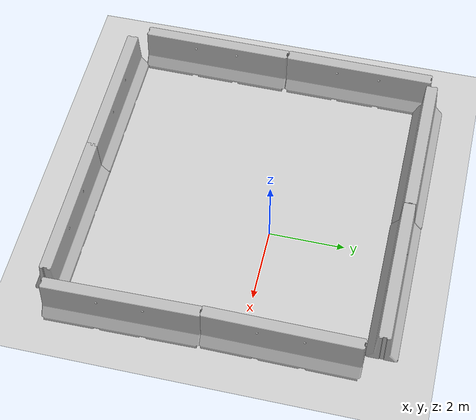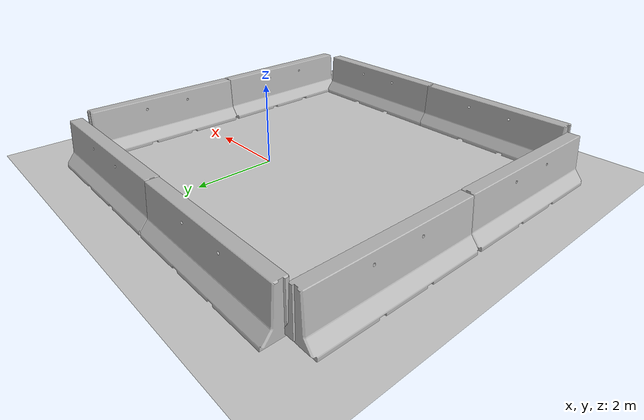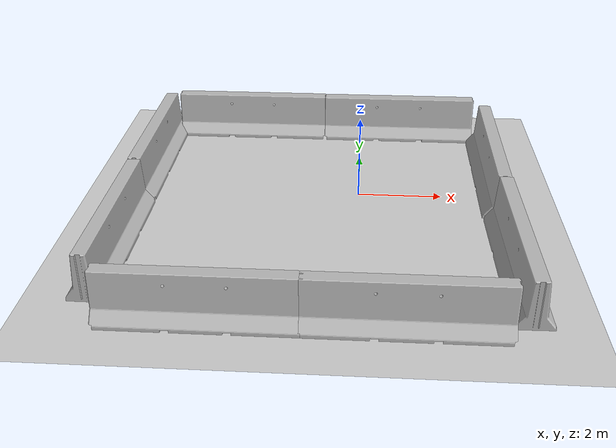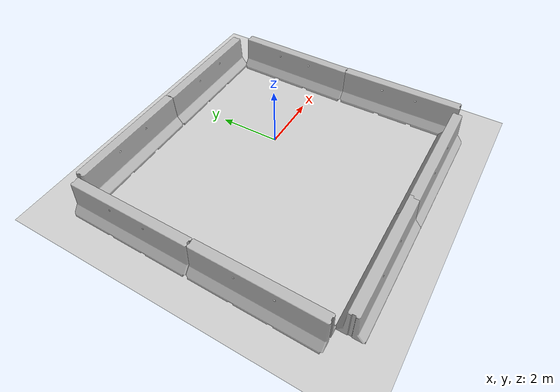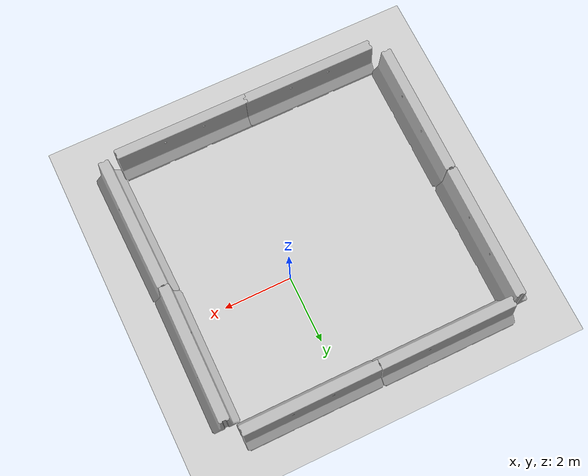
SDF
<sdf version="1.6">
 <world name="default">
  <light name="sun" type="directional">
   <pose>0 0 10 0 -0 0</pose>
   <diffuse>0.8 0.8 0.8 1</diffuse>
   <specular>0.1 0.1 0.1 1</specular>
   <attenuation>
    <range>1000</range>
    <constant>0.9</constant>
    <linear>0.01</linear>
    <quadratic>0.001</quadratic>
   </attenuation>
   <direction>-0.5 0.5 -1</direction>
  </light>
  <model name="ground_plane">
   <static>1</static>
   <link name="link">
    <collision name="collision">
     <geometry><plane><normal>0 0 1</normal><size>100 100</size></plane></geometry>
     <surface><friction><ode><mu>100</mu><mu2>50</mu2></ode></friction></surface>
    </collision>
    <visual name="visual">
     <cast_shadows>0</cast_shadows>
     <geometry><plane><normal>0 0 1</normal><size>100 100</size></plane></geometry>
     <material>
      <script><uri>file://media/materials/scripts/gazebo.material</uri><name>Gazebo/Grey</name></script>
     </material>
    </visual>
   </link>
  </model>
  <gravity>0 0 -9.8</gravity>
  <magnetic_field>6e-06 2.3e-05 -4.2e-05</magnetic_field>
  <atmosphere type="adiabatic"/>
  <physics name="default_physics" default="0" type="ode">
   <max_step_size>0.001</max_step_size>
   <real_time_factor>1</real_time_factor>
   <real_time_update_rate>1000</real_time_update_rate>
  </physics>
  <scene><ambient>0.4 0.4 0.4 1</ambient><background>0.7 0.7 0.7 1</background><shadows>1</shadows></scene>
  <spherical_coordinates>
   <surface_model>EARTH_WGS84</surface_model>
   <latitude_deg>0</latitude_deg>
   <longitude_deg>0</longitude_deg>
   <elevation>0</elevation>
   <heading_deg>0</heading_deg>
  </spherical_coordinates>
  <model name="jersey_barrier">
   <static>1</static>
   <link name="link">
    <visual name="visual">
     <geometry>
      <mesh><uri>model://jersey_barrier/meshes/jersey_barrier.dae</uri><scale>1 1 1</scale></mesh>
     </geometry>
    </visual>
    <collision name="upright">
     <pose>0 0 0.5715 0 -0 0</pose>
     <geometry><box><size>4.06542 0.3063 1.143</size></box></geometry>
    </collision>
    <collision name="base">
     <pose>0 0 0.032258 0 -0 0</pose>
     <geometry><box><size>4.06542 0.8107 0.064516</size></box></geometry>
    </collision>
    <collision name="base2">
     <pose>0 0 0.1 0 -0 0</pose>
     <geometry><box><size>4.06542 0.65 0.1</size></box></geometry>
    </collision>
    <collision name="base3">
     <pose>0 0 0.2 0 -0 0</pose>
     <geometry><box><size>4.06542 0.5 0.1</size></box></geometry>
    </collision>
    <collision name="left-angle">
     <pose>0 -0.224 0.2401 0.9 -0 0</pose>
     <geometry><box><size>4.06542 0.5 0.064516</size></box></geometry>
    </collision>
    <collision name="right-angle">
     <pose>0 0.224 0.2401 -0.9 0 0</pose>
     <geometry><box><size>4.06542 0.5 0.064516</size></box></geometry>
    </collision>
   </link>
   <pose>-2.97106 -5.06606 0 0 -0 0</pose>
  </model>
  <model name="jersey_barrier_0">
   <static>1</static>
   <link name="link">
    <visual name="visual">
     <geometry>
      <mesh><uri>model://jersey_barrier/meshes/jersey_barrier.dae</uri><scale>1 1 1</scale></mesh>
     </geometry>
    </visual>
    <collision name="upright">
     <pose>0 0 0.5715 0 -0 0</pose>
     <geometry><box><size>4.06542 0.3063 1.143</size></box></geometry>
    </collision>
    <collision name="base">
     <pose>0 0 0.032258 0 -0 0</pose>
     <geometry><box><size>4.06542 0.8107 0.064516</size></box></geometry>
    </collision>
    <collision name="base2">
     <pose>0 0 0.1 0 -0 0</pose>
     <geometry><box><size>4.06542 0.65 0.1</size></box></geometry>
    </collision>
    <collision name="base3">
     <pose>0 0 0.2 0 -0 0</pose>
     <geometry><box><size>4.06542 0.5 0.1</size></box></geometry>
    </collision>
    <collision name="left-angle">
     <pose>0 -0.224 0.2401 0.9 -0 0</pose>
     <geometry><box><size>4.06542 0.5 0.064516</size></box></geometry>
    </collision>
    <collision name="right-angle">
     <pose>0 0.224 0.2401 -0.9 0 0</pose>
     <geometry><box><size>4.06542 0.5 0.064516</size></box></geometry>
    </collision>
   </link>
   <pose>0.959454 -5.06837 0 0 -0 0</pose>
  </model>
  <model name="jersey_barrier_6">
   <static>1</static>
   <link name="link">
    <visual name="visual">
     <geometry>
      <mesh><uri>model://jersey_barrier/meshes/jersey_barrier.dae</uri><scale>1 1 1</scale></mesh>
     </geometry>
    </visual>
    <collision name="upright">
     <pose>0 0 0.5715 0 -0 0</pose>
     <geometry><box><size>4.06542 0.3063 1.143</size></box></geometry>
    </collision>
    <collision name="base">
     <pose>0 0 0.032258 0 -0 0</pose>
     <geometry><box><size>4.06542 0.8107 0.064516</size></box></geometry>
    </collision>
    <collision name="base2">
     <pose>0 0 0.1 0 -0 0</pose>
     <geometry><box><size>4.06542 0.65 0.1</size></box></geometry>
    </collision>
    <collision name="base3">
     <pose>0 0 0.2 0 -0 0</pose>
     <geometry><box><size>4.06542 0.5 0.1</size></box></geometry>
    </collision>
    <collision name="left-angle">
     <pose>0 -0.224 0.2401 0.9 -0 0</pose>
     <geometry><box><size>4.06542 0.5 0.064516</size></box></geometry>
    </collision>
    <collision name="right-angle">
     <pose>0 0.224 0.2401 -0.9 0 0</pose>
     <geometry><box><size>4.06542 0.5 0.064516</size></box></geometry>
    </collision>
   </link>
   <pose>3.34753 -3.01485 0 0 0 -1.55624</pose>
  </model>
  <model name="jersey_barrier_6_clone">
   <static>1</static>
   <link name="link">
    <visual name="visual">
     <geometry>
      <mesh><uri>model://jersey_barrier/meshes/jersey_barrier.dae</uri><scale>1 1 1</scale></mesh>
     </geometry>
    </visual>
    <collision name="upright">
     <pose>0 0 0.5715 0 -0 0</pose>
     <geometry><box><size>4.06542 0.3063 1.143</size></box></geometry>
    </collision>
    <collision name="base">
     <pose>0 0 0.032258 0 -0 0</pose>
     <geometry><box><size>4.06542 0.8107 0.064516</size></box></geometry>
    </collision>
    <collision name="base2">
     <pose>0 0 0.1 0 -0 0</pose>
     <geometry><box><size>4.06542 0.65 0.1</size></box></geometry>
    </collision>
    <collision name="base3">
     <pose>0 0 0.2 0 -0 0</pose>
     <geometry><box><size>4.06542 0.5 0.1</size></box></geometry>
    </collision>
    <collision name="left-angle">
     <pose>0 -0.224 0.2401 0.9 -0 0</pose>
     <geometry><box><size>4.06542 0.5 0.064516</size></box></geometry>
    </collision>
    <collision name="right-angle">
     <pose>0 0.224 0.2401 -0.9 0 0</pose>
     <geometry><box><size>4.06542 0.5 0.064516</size></box></geometry>
    </collision>
   </link>
   <pose>3.30905 1.02622 0 0 -0 1.5633</pose>
  </model>
  <model name="jersey_barrier_6_clone_0">
   <static>1</static>
   <link name="link">
    <visual name="visual">
     <geometry>
      <mesh><uri>model://jersey_barrier/meshes/jersey_barrier.dae</uri><scale>1 1 1</scale></mesh>
     </geometry>
    </visual>
    <collision name="upright">
     <pose>0 0 0.5715 0 -0 0</pose>
     <geometry><box><size>4.06542 0.3063 1.143</size></box></geometry>
    </collision>
    <collision name="base">
     <pose>0 0 0.032258 0 -0 0</pose>
     <geometry><box><size>4.06542 0.8107 0.064516</size></box></geometry>
    </collision>
    <collision name="base2">
     <pose>0 0 0.1 0 -0 0</pose>
     <geometry><box><size>4.06542 0.65 0.1</size></box></geometry>
    </collision>
    <collision name="base3">
     <pose>0 0 0.2 0 -0 0</pose>
     <geometry><box><size>4.06542 0.5 0.1</size></box></geometry>
    </collision>
    <collision name="left-angle">
     <pose>0 -0.224 0.2401 0.9 -0 0</pose>
     <geometry><box><size>4.06542 0.5 0.064516</size></box></geometry>
    </collision>
    <collision name="right-angle">
     <pose>0 0.224 0.2401 -0.9 0 0</pose>
     <geometry><box><size>4.06542 0.5 0.064516</size></box></geometry>
    </collision>
   </link>
   <pose>-5.29828 -2.66457 0 0 -0 1.5633</pose>
  </model>
  <model name="jersey_barrier_6_clone_1">
   <static>1</static>
   <link name="link">
    <visual name="visual">
     <geometry>
      <mesh><uri>model://jersey_barrier/meshes/jersey_barrier.dae</uri><scale>1 1 1</scale></mesh>
     </geometry>
    </visual>
    <collision name="upright">
     <pose>0 0 0.5715 0 -0 0</pose>
     <geometry><box><size>4.06542 0.3063 1.143</size></box></geometry>
    </collision>
    <collision name="base">
     <pose>0 0 0.032258 0 -0 0</pose>
     <geometry><box><size>4.06542 0.8107 0.064516</size></box></geometry>
    </collision>
    <collision name="base2">
     <pose>0 0 0.1 0 -0 0</pose>
     <geometry><box><size>4.06542 0.65 0.1</size></box></geometry>
    </collision>
    <collision name="base3">
     <pose>0 0 0.2 0 -0 0</pose>
     <geometry><box><size>4.06542 0.5 0.1</size></box></geometry>
    </collision>
    <collision name="left-angle">
     <pose>0 -0.224 0.2401 0.9 -0 0</pose>
     <geometry><box><size>4.06542 0.5 0.064516</size></box></geometry>
    </collision>
    <collision name="right-angle">
     <pose>0 0.224 0.2401 -0.9 0 0</pose>
     <geometry><box><size>4.06542 0.5 0.064516</size></box></geometry>
    </collision>
   </link>
   <pose>-5.28008 1.40861 0 0 -0 1.5633</pose>
  </model>
  <model name="jersey_barrier_2">
   <static>1</static>
   <link name="link">
    <visual name="visual">
     <geometry>
      <mesh><uri>model://jersey_barrier/meshes/jersey_barrier.dae</uri><scale>1 1 1</scale></mesh>
     </geometry>
    </visual>
    <collision name="upright">
     <pose>0 0 0.5715 0 -0 0</pose>
     <geometry><box><size>4.06542 0.3063 1.143</size></box></geometry>
    </collision>
    <collision name="base">
     <pose>0 0 0.032258 0 -0 0</pose>
     <geometry><box><size>4.06542 0.8107 0.064516</size></box></geometry>
    </collision>
    <collision name="base2">
     <pose>0 0 0.1 0 -0 0</pose>
     <geometry><box><size>4.06542 0.65 0.1</size></box></geometry>
    </collision>
    <collision name="base3">
     <pose>0 0 0.2 0 -0 0</pose>
     <geometry><box><size>4.06542 0.5 0.1</size></box></geometry>
    </collision>
    <collision name="left-angle">
     <pose>0 -0.224 0.2401 0.9 -0 0</pose>
     <geometry><box><size>4.06542 0.5 0.064516</size></box></geometry>
    </collision>
    <collision name="right-angle">
     <pose>0 0.224 0.2401 -0.9 0 0</pose>
     <geometry><box><size>4.06542 0.5 0.064516</size></box></geometry>
    </collision>
   </link>
   <pose>1.03813 3.46844 0 0 -0 0</pose>
  </model>
  <model name="jersey_barrier_3">
   <static>1</static>
   <link name="link">
    <visual name="visual">
     <geometry>
      <mesh><uri>model://jersey_barrier/meshes/jersey_barrier.dae</uri><scale>1 1 1</scale></mesh>
     </geometry>
    </visual>
    <collision name="upright">
     <pose>0 0 0.5715 0 -0 0</pose>
     <geometry><box><size>4.06542 0.3063 1.143</size></box></geometry>
    </collision>
    <collision name="base">
     <pose>0 0 0.032258 0 -0 0</pose>
     <geometry><box><size>4.06542 0.8107 0.064516</size></box></geometry>
    </collision>
    <collision name="base2">
     <pose>0 0 0.1 0 -0 0</pose>
     <geometry><box><size>4.06542 0.65 0.1</size></box></geometry>
    </collision>
    <collision name="base3">
     <pose>0 0 0.2 0 -0 0</pose>
     <geometry><box><size>4.06542 0.5 0.1</size></box></geometry>
    </collision>
    <collision name="left-angle">
     <pose>0 -0.224 0.2401 0.9 -0 0</pose>
     <geometry><box><size>4.06542 0.5 0.064516</size></box></geometry>
    </collision>
    <collision name="right-angle">
     <pose>0 0.224 0.2401 -0.9 0 0</pose>
     <geometry><box><size>4.06542 0.5 0.064516</size></box></geometry>
    </collision>
   </link>
   <pose>-2.99614 3.48152 0 0 -0 0</pose>
  </model>
 </world>
</sdf>
